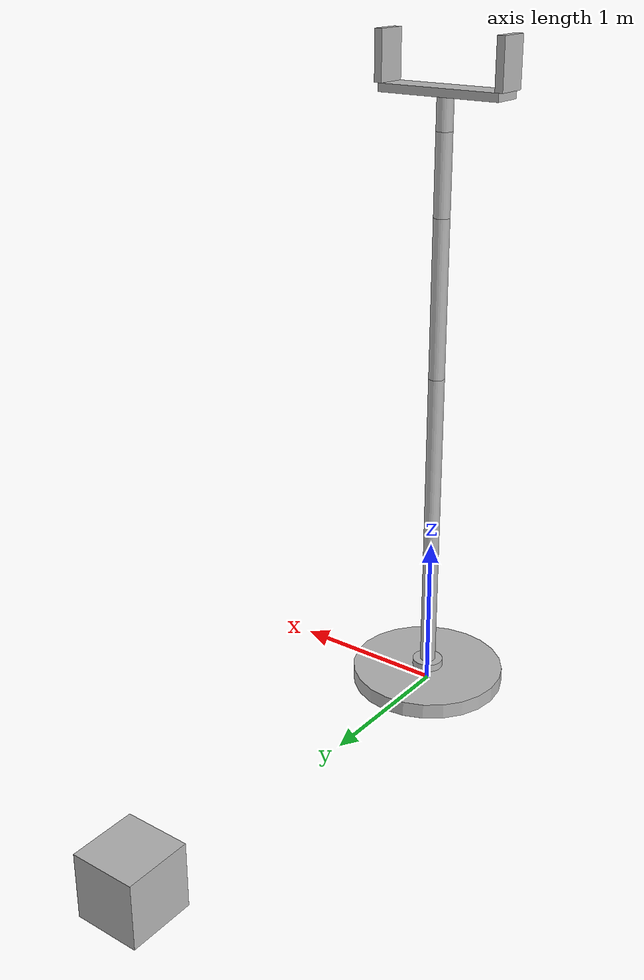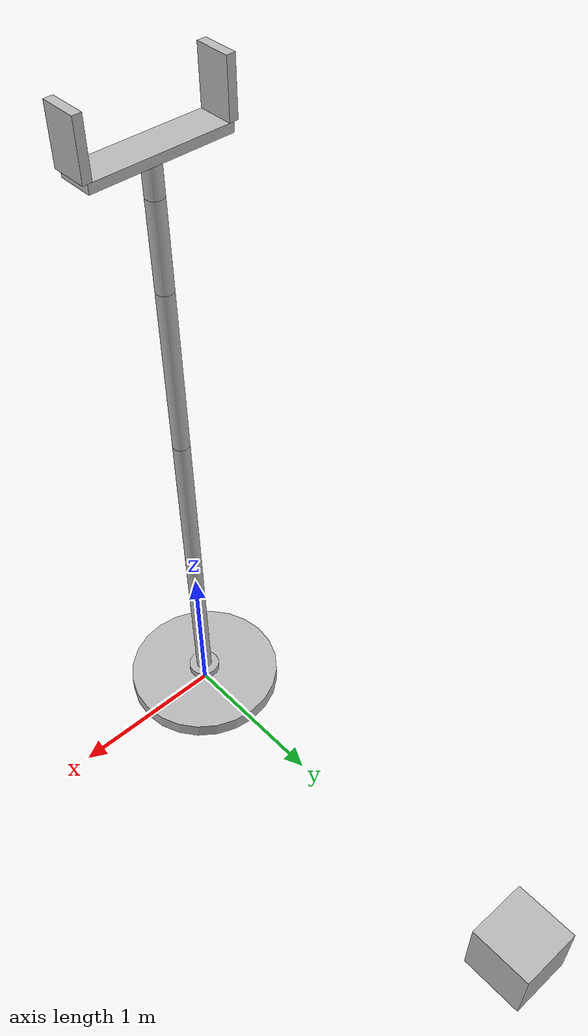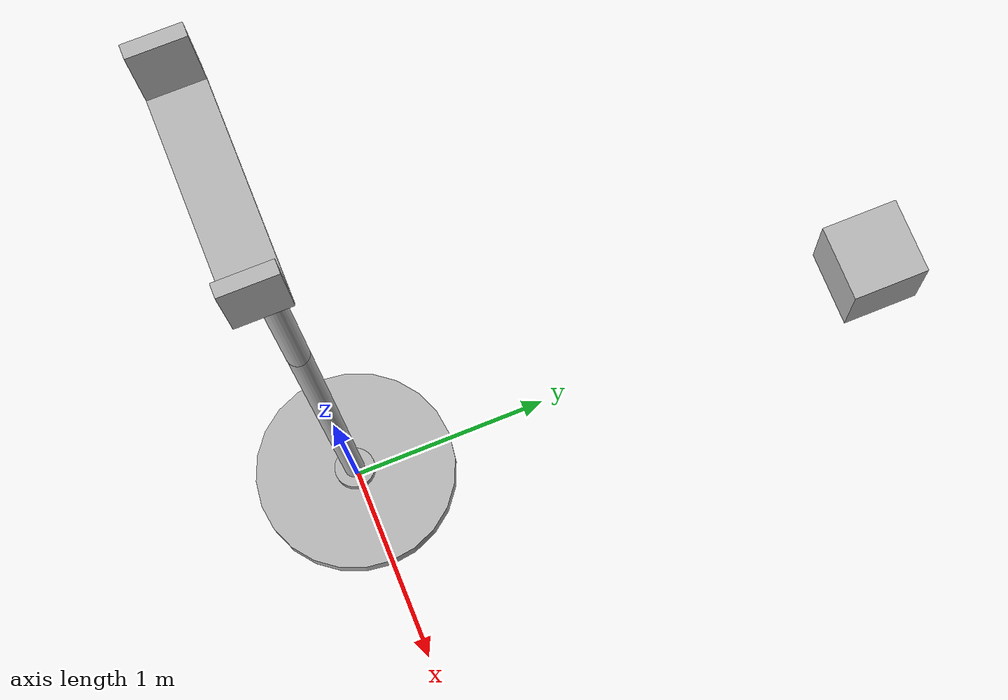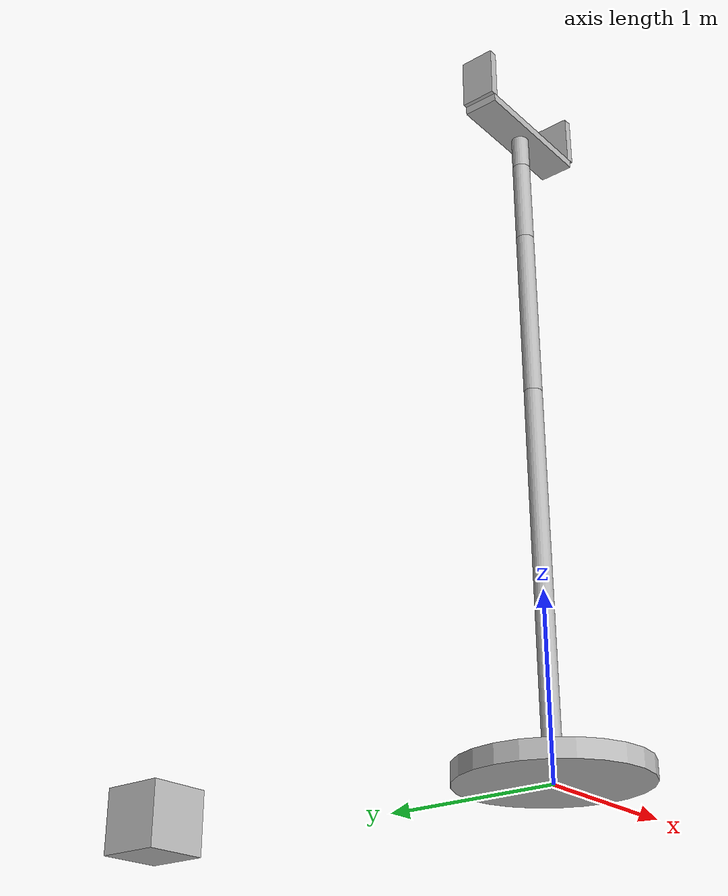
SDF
<?xml version='1.0'?>
<sdf version='1.4'>
    <model name="my_robot">
        <static>false</static>
        <self_collide>1</self_collide>
        <link name='chassis'>
            <pose>0 0 .05 0 0 0</pose>
            <inertial>
                <mass>10000.0</mass>
            </inertial>
            <collision name='collision'>
                <geometry>
                    <cylinder>
                        <radius>.5</radius>
                        <length>.1</length>
                    </cylinder>
                </geometry>
            </collision>
            <visual name='visual'>
                <geometry>
                    <cylinder>
                        <radius>.5</radius>
                        <length>.1</length>
                    </cylinder>
                </geometry>
            </visual>
        </link>

        <link name='arm1'>
            <pose>0 0 .125 0 0 0</pose>
            <collision name='collision'>
                <geometry>
                    <cylinder>
                        <radius>.1</radius>
                        <length>.05</length>
                    </cylinder>
                </geometry>
            </collision>

            <visual name='visual'>
                <geometry>
                    <cylinder>
                        <radius>.1</radius>
                        <length>.05</length>
                    </cylinder>
                </geometry>
            </visual>
        </link>
        <link name='arm2'>
            <pose>0 0 1.15 0 0 0</pose>
            <collision name='collision'>
                <geometry>
                    <cylinder>
                        <radius>.05</radius>
                        <length>2.0</length>
                    </cylinder>
                </geometry>
            </collision>

            <visual name='visual'>
                <geometry>
                    <cylinder>
                        <radius>.05</radius>
                        <length>2.0</length>
                    </cylinder>
                </geometry>
            </visual>
        </link>
        <link name='arm3'>
            <pose>0 0 2.65 0 0 0</pose>
            <collision name='collision'>
                <geometry>
                    <cylinder>
                        <radius>.05</radius>
                        <length>1.0</length>
                    </cylinder>
                </geometry>
            </collision>

            <visual name='visual'>
                <geometry>
                    <cylinder>
                        <radius>.05</radius>
                        <length>1.0</length>
                    </cylinder>
                </geometry>
            </visual>
        </link>
        <link name='arm4'>
            <pose>0 0 3.40 0 0 0</pose>
            <collision name='collision'>
                <geometry>
                    <cylinder>
                        <radius>.05</radius>
                        <length>.5</length>
                    </cylinder>
                </geometry>
            </collision>

            <visual name='visual'>
                <geometry>
                    <cylinder>
                        <radius>.05</radius>
                        <length>.5</length>
                    </cylinder>
                </geometry>
            </visual>
        </link>
        <link name='arm5'>
            <pose>0 0 3.75 0 0 0</pose>
            <collision name='collision'>
                <geometry>
                    <cylinder>
                        <radius>.05</radius>
                        <length>.2</length>
                    </cylinder>
                </geometry>
            </collision>

            <visual name='visual'>
                <geometry>
                    <cylinder>
                        <radius>.05</radius>
                        <length>.2</length>
                    </cylinder>
                </geometry>
            </visual>
        </link>

        <link name='gripper1'>
            <pose>0 0 3.875 0 0 0</pose>
            <collision name='collision'>
                <geometry>
                    <box>
                        <size>0.8 0.2 0.05</size>
                    </box>
                </geometry>
            </collision>

            <visual name='visual'>
                <geometry>
                    <box>
                        <size>0.8 0.2 0.05</size>
                    </box>
                </geometry>
            </visual>
        </link>
        <link name='gripper2'>
            <pose>-0.4 0 4.05 0 0 0</pose>
            <collision name='collision'>
                <geometry>
                    <box>
                        <size>0.05 0.2 0.3</size>
                    </box>
                </geometry>
            </collision>

            <visual name='visual'>
                <geometry>
                    <box>
                        <size>0.05 0.2 0.3</size>
                    </box>
                </geometry>
            </visual>
        </link>
        <link name='gripper3'>
            <pose>0.4 0 4.05 0 0 0</pose>
            <collision name='collision'>
                <geometry>
                    <box>
                        <size>0.05 0.2 0.3</size>
                    </box>
                </geometry>
            </collision>

            <visual name='visual'>
                <geometry>
                    <box>
                        <size>0.05 0.2 0.3</size>
                    </box>
                </geometry>
            </visual>
        </link>

        <link name='box1'>
            <pose>0 2.8 0.2 0 0 0</pose>
            <collision name='collision'>
                <geometry>
                    <box>
                        <size>0.4 0.4 0.4</size>
                    </box>
                </geometry>
            </collision>

            <visual name='visual'>
                <geometry>
                    <box>
                        <size>0.4 0.4 0.4</size>
                    </box>
                </geometry>
            </visual>
        </link>

        <joint name="fixed to ground" type="revolute">
            <child>chassis</child>
            <parent>world</parent>
        </joint>
        <joint type="revolute" name="chasis_arm1_joint">
            <pose>0 0 -0.025 0 0 0</pose>
            <child>arm1</child>
            <parent>chassis</parent>
            <axis>
                <xyz>0 0 1</xyz>
            </axis>
        </joint>
        <joint type="revolute" name="arm1_arm2_joint">
            <pose>0 0 -1 0 0 0</pose>
            <child>arm2</child>
            <parent>arm1</parent>
            <axis>
                <xyz>1 0 0</xyz>
            </axis>
        </joint>
        <joint type="revolute" name="arm2_arm3_joint">
            <pose>0 0 -0.5 0 0 0</pose>
            <child>arm3</child>
            <parent>arm2</parent>
            <axis>
                <xyz>1 0 0</xyz>
            </axis>
        </joint>
        <joint type="revolute" name="arm3_arm4_joint">
            <pose>0 0 -0.25 0 0 0</pose>
            <child>arm4</child>
            <parent>arm3</parent>
            <axis>
                <xyz>1 0 0</xyz>
            </axis>
        </joint>

        <joint type="revolute" name="arm4_arm5_joint">
            <pose>0 0 -0.1 0 0 0</pose>
            <child>arm5</child>
            <parent>arm4</parent>
            <axis>
                <xyz>0 1 0</xyz>
            </axis>
        </joint>

        <joint type="revolute" name="arm5_gripper1_joint">
            <pose>0 0 -0.025 0 0 0</pose>
            <child>gripper1</child>
            <parent>arm5</parent>
            <axis>
                <xyz>0 0 1</xyz>
            </axis>
        </joint>

        <joint type="revolute" name="gripper1_gripper2_joint">
            <pose>0 0 -0.15 0 0 0</pose>
            <child>gripper2</child>
            <parent>gripper1</parent>
            <axis>
                <xyz>0 1 0</xyz>
            </axis>
        </joint>
        <joint type="revolute" name="gripper1_gripper3_joint">
            <pose>0 0 -0.15 0 0 0</pose>
            <child>gripper3</child>
            <parent>gripper1</parent>
            <axis>
                <xyz>0 1 0</xyz>
            </axis>
        </joint>
        <plugin name="arm_control" filename="libarm_gazebo.so" />

    </model>
</sdf>
